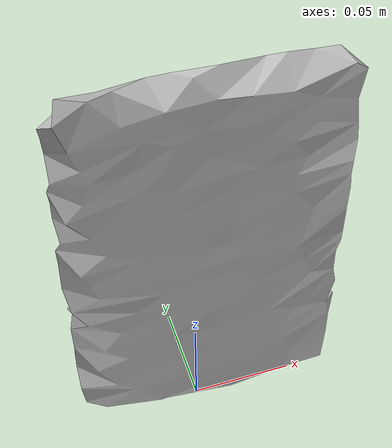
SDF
<?xml version="1.0" ?>
<sdf version="1.4">
  <model name="book">
    <link name="book_link">
      <inertial>
        <pose>0 0 0 0 0 0</pose>
        <mass>0.08</mass>
      </inertial>

      <visual name="book_visual">
        <pose>0 0 0 0 0 0</pose>
        <material>
          <script>
            <uri>model://book/materials/scripts</uri>
            <uri>model://book/materials/textures</uri>
            <name>book</name>
          </script>
        </material>
        <geometry>
          <mesh>
            <uri>model://book/meshes/book_aligned.dae</uri>
          </mesh>
        </geometry>
      </visual>

      <collision name="book_collision">
        <pose>0 0 0.103 0 0 0</pose>
        <geometry>
          <box>
            <size>0.13 0.03 0.206</size>
          </box>
        </geometry>
      </collision>

    </link>
  </model>
</sdf>
